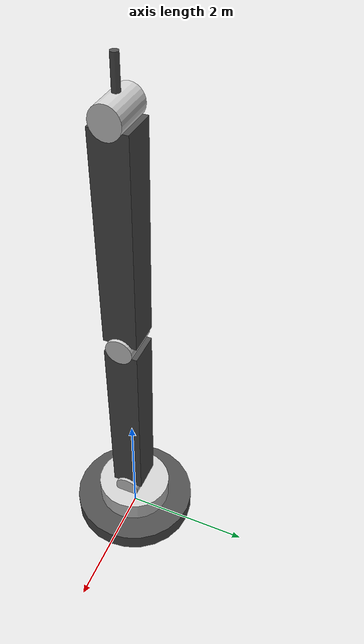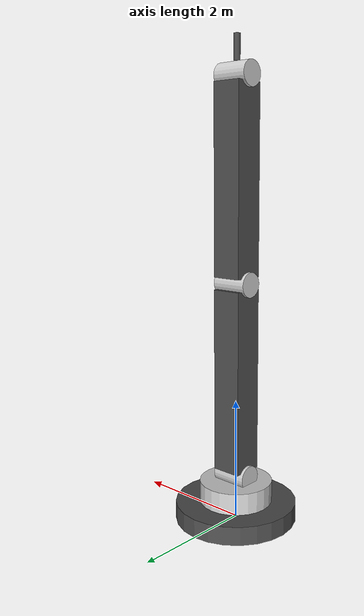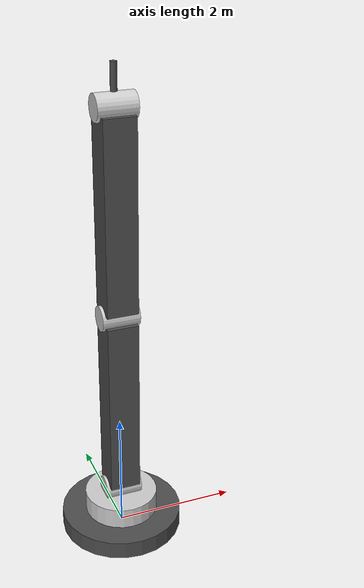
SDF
<?xml version='1.0'?>

<sdf version="1.11">
    <model name="arm_4dof">
        <pose> 0.0 0.0 0.0 0.0 0.0 0.0 </pose>
        <static> false </static>

        <!--
            Links
        -->

        <link name="base_link">
            <pose> 0.0 0.0 0.15 0.0 0.0 0.0 </pose>
            <visual name="visual">
                <geometry>
                    <cylinder>
                        <radius> 1.0 </radius>
                        <length> 0.3 </length>
                    </cylinder>
                </geometry>
                <material>
                        <ambient> 0.3 0.3 0.3 1.0 </ambient>
                        <diffuse> 0.3 0.3 0.3 1.0 </diffuse>
                </material>
            </visual>
            <collision name="collision">
                <geometry>
                    <cylinder>
                        <radius> 1.0 </radius>
                        <length> 0.3 </length>
                    </cylinder>
                </geometry>
            </collision>
        </link>
        <link name="shoulder_link">
            <pose relative_to="shoulder_joint_yaw"> 0.0 0.0 0.0 0.0 0.0 0.0 </pose>
            <visual name="visual">
                <pose> 0.0 0.0 0.2 0.0 0.0 0.0 </pose>
                <geometry>
                    <cylinder>
                        <radius> 0.6 </radius>
                        <length> 0.4 </length>
                    </cylinder>
                </geometry>
                <material>
                        <ambient> 0.8 0.8 0.8 1.0 </ambient>
                        <diffuse> 0.8 0.8 0.8 1.0 </diffuse>
                </material>
            </visual>
            <collision name="collision">
                <pose> 0.0 0.0 0.2 0.0 0.0 0.0 </pose>
                <geometry>
                    <cylinder>
                        <radius> 0.6 </radius>
                        <length> 0.4 </length>
                    </cylinder>
                </geometry>
            </collision>
        </link>
        <link name="upper_arm_link">
            <pose relative_to="shoulder_joint_pitch"> 0.0 0.0 0.0 0.0 0.0 0.0 </pose>
            <visual name="link_visual">
                <pose> 0.0 0.0 1.6 0.0 0.0 0.0 </pose>
                <geometry>
                    <box>
                        <size> 0.5 0.5 3.0 </size>
                    </box>
                </geometry>
                <material>
                        <ambient> 0.3 0.3 0.3 1.0 </ambient>
                        <diffuse> 0.3 0.3 0.3 1.0 </diffuse>
                </material>
            </visual>
            <collision name="link_collision">
                <pose> 0.0 0.0 1.6 0.0 0.0 0.0 </pose>
                <geometry>
                    <box>
                        <size> 0.5 0.5 3.0 </size>
                    </box>
                </geometry>
            </collision>
            <visual name="joint_visual">
                <pose> 0.0 0.0 0.0 0.0 1.570796 0.0 </pose>
                <geometry>
                    <cylinder>
                        <radius> 0.2 </radius>
                        <length> 0.6 </length>
                    </cylinder>
                </geometry>
                <material>
                        <ambient> 0.8 0.8 0.8 1.0 </ambient>
                        <diffuse> 0.8 0.8 0.8 1.0 </diffuse>
                </material>
            </visual>
        </link>
        <link name="forearm_link">
            <pose relative_to="elbow_joint"> 0.0 0.0 0.0 0.0 0.0 0.0 </pose>
            <visual name="link_visual">
                <pose> 0.0 0.0 1.6 0.0 0.0 0.0 </pose>
                <geometry>
                    <box>
                        <size> 0.5 0.5 3.0 </size>
                    </box>
                </geometry>
                <material>
                        <ambient> 0.3 0.3 0.3 1.0 </ambient>
                        <diffuse> 0.3 0.3 0.3 1.0 </diffuse>
                </material>
            </visual>
            <collision name="link_collision">
                <pose> 0.0 0.0 1.6 0.0 0.0 0.0 </pose>
                <geometry>
                    <box>
                        <size> 0.5 0.5 3.0 </size>
                    </box>
                </geometry>
            </collision>
            <visual name="joint_visual">
                <pose> 0.0 0.0 0.0 0.0 1.570796 0.0 </pose>
                <geometry>
                    <cylinder>
                        <radius> 0.2 </radius>
                        <length> 0.6 </length>
                    </cylinder>
                </geometry>
                <material>
                        <ambient> 0.8 0.8 0.8 1.0 </ambient>
                        <diffuse> 0.8 0.8 0.8 1.0 </diffuse>
                </material>
            </visual>
        </link>
        <link name="end_effector_link">
            <pose relative_to="wrist_joint"> 0.0 0.0 0.0 0.0 0.0 0.0 </pose>
            <visual name="link_visual">
                <pose> 0.0 0.0 0.4 0.0 0.0 0.0 </pose>
                <geometry>
                    <cylinder>
                        <radius> 0.05 </radius>
                        <length> 0.4 </length>
                    </cylinder>
                </geometry>
                <material>
                        <ambient> 0.3 0.3 0.3 1.0 </ambient>
                        <diffuse> 0.3 0.3 0.3 1.0 </diffuse>
                </material>
            </visual>
            <visual name="joint_visual">
                <pose> 0.0 0.0 0.0 0.0 1.570796 0.0 </pose>
                <geometry>
                    <cylinder>
                        <radius> 0.2 </radius>
                        <length> 0.6 </length>
                    </cylinder>
                </geometry>
                <material>
                        <ambient> 0.8 0.8 0.8 1.0 </ambient>
                        <diffuse> 0.8 0.8 0.8 1.0 </diffuse>
                </material>
            </visual>
        </link>

        <!--
            Joints
        -->

        <joint name="shoulder_joint_yaw" type="revolute">
            <pose relative_to="base_link"> 0.0 0.0 0.1 0.0 0.0 0.0 </pose>
            <parent>base_link</parent>
            <child>shoulder_link</child>
            <axis>
                <xyz> 0.0 0.0 1.0 </xyz>
            </axis>
        </joint>
        <joint name="shoulder_joint_pitch" type="revolute">
            <pose relative_to="shoulder_link"> 0.0 0.0 0.5 0.0 0.0 0.0 </pose>
            <parent>shoulder_link</parent>
            <child>upper_arm_link</child>
            <axis>
                <xyz> 0.0 1.0 0.0 </xyz>
            </axis>
        </joint>
        <joint name="elbow_joint" type="revolute">
            <pose relative_to="upper_arm_link"> 0.0 0.0 3.2 0.0 0.0 0.0 </pose>
            <parent>upper_arm_link</parent>
            <child>forearm_link</child>
            <axis>
                <xyz> 0.0 1.0 0.0 </xyz>
            </axis>
        </joint>
        <joint name="wrist_joint" type="revolute">
            <pose relative_to="forearm_link"> 0.0 0.0 3.2 0.0 0.0 0.0 </pose>
            <parent>forearm_link</parent>
            <child>end_effector_link</child>
            <axis>
                <xyz> 0.0 1.0 0.0 </xyz>
            </axis>
        </joint>
    </model>
</sdf>
